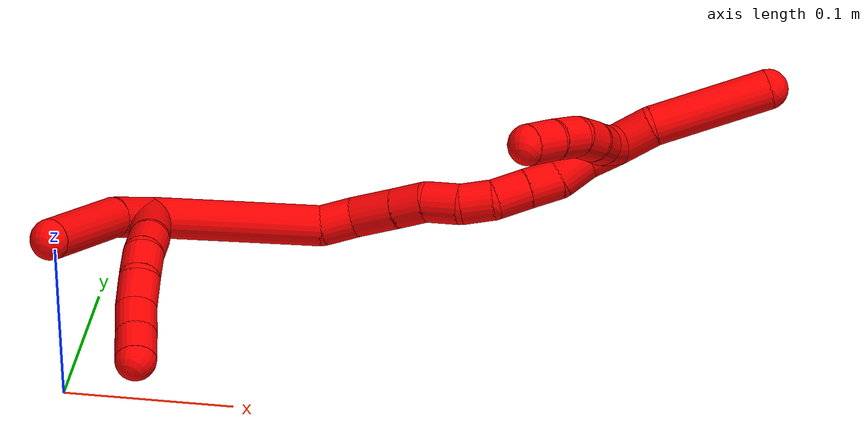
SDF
<sdf version="1.7">
 <world name="default">
  <model name="2">
   <static>0</static>
   <link name="2">
    <collision name="collision-cylinder-e_1_2_8">
     <pose>0.011216 -0.011234 -0.017692 2.57585 0.491386 1.42365</pose>
     <geometry><cylinder><radius>0.0125</radius><length>0.047539</length></cylinder></geometry>
     <surface>
      <friction><ode><mu>1.16</mu><mu2>1.16</mu2><slip1>0</slip1><slip2>0</slip2></ode></friction>
      <contact><ode><kp>1e+06</kp><kd>1</kd><max_vel>0</max_vel><min_depth>0.001</min_depth></ode></contact>
     </surface>
    </collision>
    <visual name="visual-cylinder-e_1_2_8">
     <pose>0.011216 -0.011234 -0.017692 2.57585 0.491386 1.42365</pose>
     <geometry><cylinder><radius>0.0125</radius><length>0.047539</length></cylinder></geometry>
     <material><ambient>1 0 0 1</ambient></material>
    </visual>
    <collision name="collision-cylinder-e_2_8_9">
     <pose>0.025817 -0.026387 -0.044691 2.74306 0.323427 1.35899</pose>
     <geometry><cylinder><radius>0.0125</radius><length>0.021303</length></cylinder></geometry>
     <surface>
      <friction><ode><mu>1.16</mu><mu2>1.16</mu2><slip1>0</slip1><slip2>0</slip2></ode></friction>
      <contact><ode><kp>1e+06</kp><kd>1</kd><max_vel>0</max_vel><min_depth>0.001</min_depth></ode></contact>
     </surface>
    </collision>
    <visual name="visual-cylinder-e_2_8_9">
     <pose>0.025817 -0.026387 -0.044691 2.74306 0.323427 1.35899</pose>
     <geometry><cylinder><radius>0.0125</radius><length>0.021303</length></cylinder></geometry>
     <material><ambient>1 0 0 1</ambient></material>
    </visual>
    <collision name="collision-cylinder-e_3_9_10">
     <pose>0.032228 -0.031073 -0.063601 3.0619 0.304434 2.63309</pose>
     <geometry><cylinder><radius>0.0125</radius><length>0.020193</length></cylinder></geometry>
     <surface>
      <friction><ode><mu>1.16</mu><mu2>1.16</mu2><slip1>0</slip1><slip2>0</slip2></ode></friction>
      <contact><ode><kp>1e+06</kp><kd>1</kd><max_vel>0</max_vel><min_depth>0.001</min_depth></ode></contact>
     </surface>
    </collision>
    <visual name="visual-cylinder-e_3_9_10">
     <pose>0.032228 -0.031073 -0.063601 3.0619 0.304434 2.63309</pose>
     <geometry><cylinder><radius>0.0125</radius><length>0.020193</length></cylinder></geometry>
     <material><ambient>1 0 0 1</ambient></material>
    </visual>
    <collision name="collision-cylinder-e_4_10_11">
     <pose>0.037218 -0.029649 -0.083004 -2.92165 0.193021 -1.43967</pose>
     <geometry><cylinder><radius>0.0125</radius><length>0.020467</length></cylinder></geometry>
     <surface>
      <friction><ode><mu>1.16</mu><mu2>1.16</mu2><slip1>0</slip1><slip2>0</slip2></ode></friction>
      <contact><ode><kp>1e+06</kp><kd>1</kd><max_vel>0</max_vel><min_depth>0.001</min_depth></ode></contact>
     </surface>
    </collision>
    <visual name="visual-cylinder-e_4_10_11">
     <pose>0.037218 -0.029649 -0.083004 -2.92165 0.193021 -1.43967</pose>
     <geometry><cylinder><radius>0.0125</radius><length>0.020467</length></cylinder></geometry>
     <material><ambient>1 0 0 1</ambient></material>
    </visual>
    <collision name="collision-cylinder-e_5_11_12">
     <pose>0.042933 -0.026853 -0.102237 -3.07756 0.377898 -2.80973</pose>
     <geometry><cylinder><radius>0.0125</radius><length>0.020338</length></cylinder></geometry>
     <surface>
      <friction><ode><mu>1.16</mu><mu2>1.16</mu2><slip1>0</slip1><slip2>0</slip2></ode></friction>
      <contact><ode><kp>1e+06</kp><kd>1</kd><max_vel>0</max_vel><min_depth>0.001</min_depth></ode></contact>
     </surface>
    </collision>
    <visual name="visual-cylinder-e_5_11_12">
     <pose>0.042933 -0.026853 -0.102237 -3.07756 0.377898 -2.80973</pose>
     <geometry><cylinder><radius>0.0125</radius><length>0.020338</length></cylinder></geometry>
     <material><ambient>1 0 0 1</ambient></material>
    </visual>
    <collision name="collision-cylinder-e_6_12_6">
     <pose>0.050491 -0.026401 -0.121002 3.12514 0.387232 3.05775</pose>
     <geometry><cylinder><radius>0.0125</radius><length>0.02016</length></cylinder></geometry>
     <surface>
      <friction><ode><mu>1.16</mu><mu2>1.16</mu2><slip1>0</slip1><slip2>0</slip2></ode></friction>
      <contact><ode><kp>1e+06</kp><kd>1</kd><max_vel>0</max_vel><min_depth>0.001</min_depth></ode></contact>
     </surface>
    </collision>
    <visual name="visual-cylinder-e_6_12_6">
     <pose>0.050491 -0.026401 -0.121002 3.12514 0.387232 3.05775</pose>
     <geometry><cylinder><radius>0.0125</radius><length>0.02016</length></cylinder></geometry>
     <material><ambient>1 0 0 1</ambient></material>
    </visual>
    <collision name="collision-cylinder-e_1_2_13">
     <pose>-0.003583 -0.012334 -0.011095 2.30337 -0.212721 -0.470419</pose>
     <geometry><cylinder><radius>0.0125</radius><length>0.033944</length></cylinder></geometry>
     <surface>
      <friction><ode><mu>1.16</mu><mu2>1.16</mu2><slip1>0</slip1><slip2>0</slip2></ode></friction>
      <contact><ode><kp>1e+06</kp><kd>1</kd><max_vel>0</max_vel><min_depth>0.001</min_depth></ode></contact>
     </surface>
    </collision>
    <visual name="visual-cylinder-e_1_2_13">
     <pose>-0.003583 -0.012334 -0.011095 2.30337 -0.212721 -0.470419</pose>
     <geometry><cylinder><radius>0.0125</radius><length>0.033944</length></cylinder></geometry>
     <material><ambient>1 0 0 1</ambient></material>
    </visual>
    <collision name="collision-cylinder-e_2_13_5">
     <pose>-0.009486 -0.044519 -0.048483 2.49488 -0.070302 -0.209105</pose>
     <geometry><cylinder><radius>0.0125</radius><length>0.066056</length></cylinder></geometry>
     <surface>
      <friction><ode><mu>1.16</mu><mu2>1.16</mu2><slip1>0</slip1><slip2>0</slip2></ode></friction>
      <contact><ode><kp>1e+06</kp><kd>1</kd><max_vel>0</max_vel><min_depth>0.001</min_depth></ode></contact>
     </surface>
    </collision>
    <visual name="visual-cylinder-e_2_13_5">
     <pose>-0.009486 -0.044519 -0.048483 2.49488 -0.070302 -0.209105</pose>
     <geometry><cylinder><radius>0.0125</radius><length>0.066056</length></cylinder></geometry>
     <material><ambient>1 0 0 1</ambient></material>
    </visual>
    <collision name="collision-cylinder-e_1_2_14">
     <pose>0.046847 0.017851 0.015412 -0.858607 1.10441 -0.549832</pose>
     <geometry><cylinder><radius>0.0125</radius><length>0.104896</length></cylinder></geometry>
     <surface>
      <friction><ode><mu>1.16</mu><mu2>1.16</mu2><slip1>0</slip1><slip2>0</slip2></ode></friction>
      <contact><ode><kp>1e+06</kp><kd>1</kd><max_vel>0</max_vel><min_depth>0.001</min_depth></ode></contact>
     </surface>
    </collision>
    <visual name="visual-cylinder-e_1_2_14">
     <pose>0.046847 0.017851 0.015412 -0.858607 1.10441 -0.549832</pose>
     <geometry><cylinder><radius>0.0125</radius><length>0.104896</length></cylinder></geometry>
     <material><ambient>1 0 0 1</ambient></material>
    </visual>
    <collision name="collision-cylinder-e_2_14_15">
     <pose>0.103224 0.036298 0.035564 -0.12496 1.1061 -0.077201</pose>
     <geometry><cylinder><radius>0.0125</radius><length>0.021322</length></cylinder></geometry>
     <surface>
      <friction><ode><mu>1.16</mu><mu2>1.16</mu2><slip1>0</slip1><slip2>0</slip2></ode></friction>
      <contact><ode><kp>1e+06</kp><kd>1</kd><max_vel>0</max_vel><min_depth>0.001</min_depth></ode></contact>
     </surface>
    </collision>
    <visual name="visual-cylinder-e_2_14_15">
     <pose>0.103224 0.036298 0.035564 -0.12496 1.1061 -0.077201</pose>
     <geometry><cylinder><radius>0.0125</radius><length>0.021322</length></cylinder></geometry>
     <material><ambient>1 0 0 1</ambient></material>
    </visual>
    <collision name="collision-cylinder-e_3_15_16">
     <pose>0.126576 0.034921 0.043064 0.620607 1.33015 0.492751</pose>
     <geometry><cylinder><radius>0.0125</radius><length>0.028462</length></cylinder></geometry>
     <surface>
      <friction><ode><mu>1.16</mu><mu2>1.16</mu2><slip1>0</slip1><slip2>0</slip2></ode></friction>
      <contact><ode><kp>1e+06</kp><kd>1</kd><max_vel>0</max_vel><min_depth>0.001</min_depth></ode></contact>
     </surface>
    </collision>
    <visual name="visual-cylinder-e_3_15_16">
     <pose>0.126576 0.034921 0.043064 0.620607 1.33015 0.492751</pose>
     <geometry><cylinder><radius>0.0125</radius><length>0.028462</length></cylinder></geometry>
     <material><ambient>1 0 0 1</ambient></material>
    </visual>
    <collision name="collision-cylinder-e_4_16_17">
     <pose>0.150117 0.031527 0.047899 0.600441 1.31753 0.470436</pose>
     <geometry><cylinder><radius>0.0125</radius><length>0.02008</length></cylinder></geometry>
     <surface>
      <friction><ode><mu>1.16</mu><mu2>1.16</mu2><slip1>0</slip1><slip2>0</slip2></ode></friction>
      <contact><ode><kp>1e+06</kp><kd>1</kd><max_vel>0</max_vel><min_depth>0.001</min_depth></ode></contact>
     </surface>
    </collision>
    <visual name="visual-cylinder-e_4_16_17">
     <pose>0.150117 0.031527 0.047899 0.600441 1.31753 0.470436</pose>
     <geometry><cylinder><radius>0.0125</radius><length>0.02008</length></cylinder></geometry>
     <material><ambient>1 0 0 1</ambient></material>
    </visual>
    <collision name="collision-cylinder-e_5_17_18">
     <pose>0.170891 0.031341 0.050777 -0.994866 1.43834 -0.887597</pose>
     <geometry><cylinder><radius>0.0125</radius><length>0.022305</length></cylinder></geometry>
     <surface>
      <friction><ode><mu>1.16</mu><mu2>1.16</mu2><slip1>0</slip1><slip2>0</slip2></ode></friction>
      <contact><ode><kp>1e+06</kp><kd>1</kd><max_vel>0</max_vel><min_depth>0.001</min_depth></ode></contact>
     </surface>
    </collision>
    <visual name="visual-cylinder-e_5_17_18">
     <pose>0.170891 0.031341 0.050777 -0.994866 1.43834 -0.887597</pose>
     <geometry><cylinder><radius>0.0125</radius><length>0.022305</length></cylinder></geometry>
     <material><ambient>1 0 0 1</ambient></material>
    </visual>
    <collision name="collision-cylinder-e_6_18_19">
     <pose>0.191293 0.033816 0.055135 -0.33544 1.18778 -0.227649</pose>
     <geometry><cylinder><radius>0.0125</radius><length>0.020154</length></cylinder></geometry>
     <surface>
      <friction><ode><mu>1.16</mu><mu2>1.16</mu2><slip1>0</slip1><slip2>0</slip2></ode></friction>
      <contact><ode><kp>1e+06</kp><kd>1</kd><max_vel>0</max_vel><min_depth>0.001</min_depth></ode></contact>
     </surface>
    </collision>
    <visual name="visual-cylinder-e_6_18_19">
     <pose>0.191293 0.033816 0.055135 -0.33544 1.18778 -0.227649</pose>
     <geometry><cylinder><radius>0.0125</radius><length>0.020154</length></cylinder></geometry>
     <material><ambient>1 0 0 1</ambient></material>
    </visual>
    <collision name="collision-cylinder-e_7_19_20">
     <pose>0.208607 0.037035 0.065404 -0.286633 0.850031 -0.130441</pose>
     <geometry><cylinder><radius>0.0125</radius><length>0.02121</length></cylinder></geometry>
     <surface>
      <friction><ode><mu>1.16</mu><mu2>1.16</mu2><slip1>0</slip1><slip2>0</slip2></ode></friction>
      <contact><ode><kp>1e+06</kp><kd>1</kd><max_vel>0</max_vel><min_depth>0.001</min_depth></ode></contact>
     </surface>
    </collision>
    <visual name="visual-cylinder-e_7_19_20">
     <pose>0.208607 0.037035 0.065404 -0.286633 0.850031 -0.130441</pose>
     <geometry><cylinder><radius>0.0125</radius><length>0.02121</length></cylinder></geometry>
     <material><ambient>1 0 0 1</ambient></material>
    </visual>
    <collision name="collision-cylinder-e_8_20_21">
     <pose>0.224302 0.041138 0.078532 -0.319927 0.852316 -0.146231</pose>
     <geometry><cylinder><radius>0.0125</radius><length>0.020529</length></cylinder></geometry>
     <surface>
      <friction><ode><mu>1.16</mu><mu2>1.16</mu2><slip1>0</slip1><slip2>0</slip2></ode></friction>
      <contact><ode><kp>1e+06</kp><kd>1</kd><max_vel>0</max_vel><min_depth>0.001</min_depth></ode></contact>
     </surface>
    </collision>
    <visual name="visual-cylinder-e_8_20_21">
     <pose>0.224302 0.041138 0.078532 -0.319927 0.852316 -0.146231</pose>
     <geometry><cylinder><radius>0.0125</radius><length>0.020529</length></cylinder></geometry>
     <material><ambient>1 0 0 1</ambient></material>
    </visual>
    <collision name="collision-cylinder-e_9_21_22">
     <pose>0.238619 0.042457 0.092671 0.104042 0.703557 0.038218</pose>
     <geometry><cylinder><radius>0.0125</radius><length>0.020373</length></cylinder></geometry>
     <surface>
      <friction><ode><mu>1.16</mu><mu2>1.16</mu2><slip1>0</slip1><slip2>0</slip2></ode></friction>
      <contact><ode><kp>1e+06</kp><kd>1</kd><max_vel>0</max_vel><min_depth>0.001</min_depth></ode></contact>
     </surface>
    </collision>
    <visual name="visual-cylinder-e_9_21_22">
     <pose>0.238619 0.042457 0.092671 0.104042 0.703557 0.038218</pose>
     <geometry><cylinder><radius>0.0125</radius><length>0.020373</length></cylinder></geometry>
     <material><ambient>1 0 0 1</ambient></material>
    </visual>
    <collision name="collision-cylinder-e_10_22_1">
     <pose>0.252482 0.042881 0.107634 -0.168473 0.780662 -0.069453</pose>
     <geometry><cylinder><radius>0.0125</radius><length>0.020668</length></cylinder></geometry>
     <surface>
      <friction><ode><mu>1.16</mu><mu2>1.16</mu2><slip1>0</slip1><slip2>0</slip2></ode></friction>
      <contact><ode><kp>1e+06</kp><kd>1</kd><max_vel>0</max_vel><min_depth>0.001</min_depth></ode></contact>
     </surface>
    </collision>
    <visual name="visual-cylinder-e_10_22_1">
     <pose>0.252482 0.042881 0.107634 -0.168473 0.780662 -0.069453</pose>
     <geometry><cylinder><radius>0.0125</radius><length>0.020668</length></cylinder></geometry>
     <material><ambient>1 0 0 1</ambient></material>
    </visual>
    <collision name="collision-cylinder-e_1_1_23">
     <pose>0.259552 0.036612 0.108261 2.2933 -0.020215 -0.044761</pose>
     <geometry><cylinder><radius>0.0125</radius><length>0.02</length></cylinder></geometry>
     <surface>
      <friction><ode><mu>1.16</mu><mu2>1.16</mu2><slip1>0</slip1><slip2>0</slip2></ode></friction>
      <contact><ode><kp>1e+06</kp><kd>1</kd><max_vel>0</max_vel><min_depth>0.001</min_depth></ode></contact>
     </surface>
    </collision>
    <visual name="visual-cylinder-e_1_1_23">
     <pose>0.259552 0.036612 0.108261 2.2933 -0.020215 -0.044761</pose>
     <geometry><cylinder><radius>0.0125</radius><length>0.02</length></cylinder></geometry>
     <material><ambient>1 0 0 1</ambient></material>
    </visual>
    <collision name="collision-cylinder-e_2_23_24">
     <pose>0.260538 0.021025 0.095889 2.18974 0.119126 0.230361</pose>
     <geometry><cylinder><radius>0.0125</radius><length>0.02</length></cylinder></geometry>
     <surface>
      <friction><ode><mu>1.16</mu><mu2>1.16</mu2><slip1>0</slip1><slip2>0</slip2></ode></friction>
      <contact><ode><kp>1e+06</kp><kd>1</kd><max_vel>0</max_vel><min_depth>0.001</min_depth></ode></contact>
     </surface>
    </collision>
    <visual name="visual-cylinder-e_2_23_24">
     <pose>0.260538 0.021025 0.095889 2.18974 0.119126 0.230361</pose>
     <geometry><cylinder><radius>0.0125</radius><length>0.02</length></cylinder></geometry>
     <material><ambient>1 0 0 1</ambient></material>
    </visual>
    <collision name="collision-cylinder-e_3_24_25">
     <pose>0.260711 0.004751 0.084476 2.17507 -0.101711 -0.193384</pose>
     <geometry><cylinder><radius>0.0125</radius><length>0.02</length></cylinder></geometry>
     <surface>
      <friction><ode><mu>1.16</mu><mu2>1.16</mu2><slip1>0</slip1><slip2>0</slip2></ode></friction>
      <contact><ode><kp>1e+06</kp><kd>1</kd><max_vel>0</max_vel><min_depth>0.001</min_depth></ode></contact>
     </surface>
    </collision>
    <visual name="visual-cylinder-e_3_24_25">
     <pose>0.260711 0.004751 0.084476 2.17507 -0.101711 -0.193384</pose>
     <geometry><cylinder><radius>0.0125</radius><length>0.02</length></cylinder></geometry>
     <material><ambient>1 0 0 1</ambient></material>
    </visual>
    <collision name="collision-cylinder-e_4_25_26">
     <pose>0.256597 -0.009726 0.071694 2.41869 -0.315105 -0.795629</pose>
     <geometry><cylinder><radius>0.0125</radius><length>0.02</length></cylinder></geometry>
     <surface>
      <friction><ode><mu>1.16</mu><mu2>1.16</mu2><slip1>0</slip1><slip2>0</slip2></ode></friction>
      <contact><ode><kp>1e+06</kp><kd>1</kd><max_vel>0</max_vel><min_depth>0.001</min_depth></ode></contact>
     </surface>
    </collision>
    <visual name="visual-cylinder-e_4_25_26">
     <pose>0.256597 -0.009726 0.071694 2.41869 -0.315105 -0.795629</pose>
     <geometry><cylinder><radius>0.0125</radius><length>0.02</length></cylinder></geometry>
     <material><ambient>1 0 0 1</ambient></material>
    </visual>
    <collision name="collision-cylinder-e_5_26_4">
     <pose>0.249199 -0.021434 0.057342 2.49794 -0.444336 -1.19096</pose>
     <geometry><cylinder><radius>0.0125</radius><length>0.02</length></cylinder></geometry>
     <surface>
      <friction><ode><mu>1.16</mu><mu2>1.16</mu2><slip1>0</slip1><slip2>0</slip2></ode></friction>
      <contact><ode><kp>1e+06</kp><kd>1</kd><max_vel>0</max_vel><min_depth>0.001</min_depth></ode></contact>
     </surface>
    </collision>
    <visual name="visual-cylinder-e_5_26_4">
     <pose>0.249199 -0.021434 0.057342 2.49794 -0.444336 -1.19096</pose>
     <geometry><cylinder><radius>0.0125</radius><length>0.02</length></cylinder></geometry>
     <material><ambient>1 0 0 1</ambient></material>
    </visual>
    <collision name="collision-cylinder-e_1_1_27">
     <pose>0.270394 0.042157 0.121762 0.276484 0.978336 0.147853</pose>
     <geometry><cylinder><radius>0.0125</radius><length>0.025652</length></cylinder></geometry>
     <surface>
      <friction><ode><mu>1.16</mu><mu2>1.16</mu2><slip1>0</slip1><slip2>0</slip2></ode></friction>
      <contact><ode><kp>1e+06</kp><kd>1</kd><max_vel>0</max_vel><min_depth>0.001</min_depth></ode></contact>
     </surface>
    </collision>
    <visual name="visual-cylinder-e_1_1_27">
     <pose>0.270394 0.042157 0.121762 0.276484 0.978336 0.147853</pose>
     <geometry><cylinder><radius>0.0125</radius><length>0.025652</length></cylinder></geometry>
     <material><ambient>1 0 0 1</ambient></material>
    </visual>
    <collision name="collision-cylinder-e_2_27_3">
     <pose>0.31118 0.04497 0.149876 -0.220977 0.945728 -0.113387</pose>
     <geometry><cylinder><radius>0.0125</radius><length>0.074348</length></cylinder></geometry>
     <surface>
      <friction><ode><mu>1.16</mu><mu2>1.16</mu2><slip1>0</slip1><slip2>0</slip2></ode></friction>
      <contact><ode><kp>1e+06</kp><kd>1</kd><max_vel>0</max_vel><min_depth>0.001</min_depth></ode></contact>
     </surface>
    </collision>
    <visual name="visual-cylinder-e_2_27_3">
     <pose>0.31118 0.04497 0.149876 -0.220977 0.945728 -0.113387</pose>
     <geometry><cylinder><radius>0.0125</radius><length>0.074348</length></cylinder></geometry>
     <material><ambient>1 0 0 1</ambient></material>
    </visual>
    <collision name="collision-sphere-3">
     <pose>0.341325 0.049737 0.171099 0 -0 0</pose>
     <geometry><sphere><radius>0.0125</radius></sphere></geometry>
     <surface>
      <friction><ode><mu>1.16</mu><mu2>1.16</mu2><slip1>0</slip1><slip2>0</slip2></ode></friction>
      <contact><ode><kp>1e+06</kp><kd>1</kd><max_vel>0</max_vel><min_depth>0.001</min_depth></ode></contact>
     </surface>
    </collision>
    <visual name="visual-sphere-3">
     <pose>0.341325 0.049737 0.171099 0 -0 0</pose>
     <geometry><sphere><radius>0.0125</radius></sphere></geometry>
     <material><ambient>1 0 0 1</ambient></material>
    </visual>
    <collision name="collision-sphere-27">
     <pose>0.281034 0.040202 0.128652 0 -0 0</pose>
     <geometry><sphere><radius>0.0125</radius></sphere></geometry>
     <surface>
      <friction><ode><mu>1.16</mu><mu2>1.16</mu2><slip1>0</slip1><slip2>0</slip2></ode></friction>
      <contact><ode><kp>1e+06</kp><kd>1</kd><max_vel>0</max_vel><min_depth>0.001</min_depth></ode></contact>
     </surface>
    </collision>
    <visual name="visual-sphere-27">
     <pose>0.281034 0.040202 0.128652 0 -0 0</pose>
     <geometry><sphere><radius>0.0125</radius></sphere></geometry>
     <material><ambient>1 0 0 1</ambient></material>
    </visual>
    <collision name="collision-sphere-4">
     <pose>0.244901 -0.026853 0.05012 0 -0 0</pose>
     <geometry><sphere><radius>0.0125</radius></sphere></geometry>
     <surface>
      <friction><ode><mu>1.16</mu><mu2>1.16</mu2><slip1>0</slip1><slip2>0</slip2></ode></friction>
      <contact><ode><kp>1e+06</kp><kd>1</kd><max_vel>0</max_vel><min_depth>0.001</min_depth></ode></contact>
     </surface>
    </collision>
    <visual name="visual-sphere-4">
     <pose>0.244901 -0.026853 0.05012 0 -0 0</pose>
     <geometry><sphere><radius>0.0125</radius></sphere></geometry>
     <material><ambient>1 0 0 1</ambient></material>
    </visual>
    <collision name="collision-sphere-26">
     <pose>0.253498 -0.016016 0.064565 0 -0 0</pose>
     <geometry><sphere><radius>0.0125</radius></sphere></geometry>
     <surface>
      <friction><ode><mu>1.16</mu><mu2>1.16</mu2><slip1>0</slip1><slip2>0</slip2></ode></friction>
      <contact><ode><kp>1e+06</kp><kd>1</kd><max_vel>0</max_vel><min_depth>0.001</min_depth></ode></contact>
     </surface>
    </collision>
    <visual name="visual-sphere-26">
     <pose>0.253498 -0.016016 0.064565 0 -0 0</pose>
     <geometry><sphere><radius>0.0125</radius></sphere></geometry>
     <material><ambient>1 0 0 1</ambient></material>
    </visual>
    <collision name="collision-sphere-25">
     <pose>0.259696 -0.003436 0.078824 0 -0 0</pose>
     <geometry><sphere><radius>0.0125</radius></sphere></geometry>
     <surface>
      <friction><ode><mu>1.16</mu><mu2>1.16</mu2><slip1>0</slip1><slip2>0</slip2></ode></friction>
      <contact><ode><kp>1e+06</kp><kd>1</kd><max_vel>0</max_vel><min_depth>0.001</min_depth></ode></contact>
     </surface>
    </collision>
    <visual name="visual-sphere-25">
     <pose>0.259696 -0.003436 0.078824 0 -0 0</pose>
     <geometry><sphere><radius>0.0125</radius></sphere></geometry>
     <material><ambient>1 0 0 1</ambient></material>
    </visual>
    <collision name="collision-sphere-24">
     <pose>0.261727 0.012938 0.090129 0 -0 0</pose>
     <geometry><sphere><radius>0.0125</radius></sphere></geometry>
     <surface>
      <friction><ode><mu>1.16</mu><mu2>1.16</mu2><slip1>0</slip1><slip2>0</slip2></ode></friction>
      <contact><ode><kp>1e+06</kp><kd>1</kd><max_vel>0</max_vel><min_depth>0.001</min_depth></ode></contact>
     </surface>
    </collision>
    <visual name="visual-sphere-24">
     <pose>0.261727 0.012938 0.090129 0 -0 0</pose>
     <geometry><sphere><radius>0.0125</radius></sphere></geometry>
     <material><ambient>1 0 0 1</ambient></material>
    </visual>
    <collision name="collision-sphere-23">
     <pose>0.25935 0.029112 0.10165 0 -0 0</pose>
     <geometry><sphere><radius>0.0125</radius></sphere></geometry>
     <surface>
      <friction><ode><mu>1.16</mu><mu2>1.16</mu2><slip1>0</slip1><slip2>0</slip2></ode></friction>
      <contact><ode><kp>1e+06</kp><kd>1</kd><max_vel>0</max_vel><min_depth>0.001</min_depth></ode></contact>
     </surface>
    </collision>
    <visual name="visual-sphere-23">
     <pose>0.25935 0.029112 0.10165 0 -0 0</pose>
     <geometry><sphere><radius>0.0125</radius></sphere></geometry>
     <material><ambient>1 0 0 1</ambient></material>
    </visual>
    <collision name="collision-sphere-1">
     <pose>0.259754 0.044112 0.114872 0 -0 0</pose>
     <geometry><sphere><radius>0.0125</radius></sphere></geometry>
     <surface>
      <friction><ode><mu>1.16</mu><mu2>1.16</mu2><slip1>0</slip1><slip2>0</slip2></ode></friction>
      <contact><ode><kp>1e+06</kp><kd>1</kd><max_vel>0</max_vel><min_depth>0.001</min_depth></ode></contact>
     </surface>
    </collision>
    <visual name="visual-sphere-1">
     <pose>0.259754 0.044112 0.114872 0 -0 0</pose>
     <geometry><sphere><radius>0.0125</radius></sphere></geometry>
     <material><ambient>1 0 0 1</ambient></material>
    </visual>
    <collision name="collision-sphere-22">
     <pose>0.245209 0.04165 0.100397 0 -0 0</pose>
     <geometry><sphere><radius>0.0125</radius></sphere></geometry>
     <surface>
      <friction><ode><mu>1.16</mu><mu2>1.16</mu2><slip1>0</slip1><slip2>0</slip2></ode></friction>
      <contact><ode><kp>1e+06</kp><kd>1</kd><max_vel>0</max_vel><min_depth>0.001</min_depth></ode></contact>
     </surface>
    </collision>
    <visual name="visual-sphere-22">
     <pose>0.245209 0.04165 0.100397 0 -0 0</pose>
     <geometry><sphere><radius>0.0125</radius></sphere></geometry>
     <material><ambient>1 0 0 1</ambient></material>
    </visual>
    <collision name="collision-sphere-21">
     <pose>0.232029 0.043263 0.084945 0 -0 0</pose>
     <geometry><sphere><radius>0.0125</radius></sphere></geometry>
     <surface>
      <friction><ode><mu>1.16</mu><mu2>1.16</mu2><slip1>0</slip1><slip2>0</slip2></ode></friction>
      <contact><ode><kp>1e+06</kp><kd>1</kd><max_vel>0</max_vel><min_depth>0.001</min_depth></ode></contact>
     </surface>
    </collision>
    <visual name="visual-sphere-21">
     <pose>0.232029 0.043263 0.084945 0 -0 0</pose>
     <geometry><sphere><radius>0.0125</radius></sphere></geometry>
     <material><ambient>1 0 0 1</ambient></material>
    </visual>
    <collision name="collision-sphere-12">
     <pose>0.046685 -0.026248 -0.111669 0 -0 0</pose>
     <geometry><sphere><radius>0.0125</radius></sphere></geometry>
     <surface>
      <friction><ode><mu>1.16</mu><mu2>1.16</mu2><slip1>0</slip1><slip2>0</slip2></ode></friction>
      <contact><ode><kp>1e+06</kp><kd>1</kd><max_vel>0</max_vel><min_depth>0.001</min_depth></ode></contact>
     </surface>
    </collision>
    <visual name="visual-sphere-12">
     <pose>0.046685 -0.026248 -0.111669 0 -0 0</pose>
     <geometry><sphere><radius>0.0125</radius></sphere></geometry>
     <material><ambient>1 0 0 1</ambient></material>
    </visual>
    <collision name="collision-sphere-11">
     <pose>0.039181 -0.027457 -0.092805 0 -0 0</pose>
     <geometry><sphere><radius>0.0125</radius></sphere></geometry>
     <surface>
      <friction><ode><mu>1.16</mu><mu2>1.16</mu2><slip1>0</slip1><slip2>0</slip2></ode></friction>
      <contact><ode><kp>1e+06</kp><kd>1</kd><max_vel>0</max_vel><min_depth>0.001</min_depth></ode></contact>
     </surface>
    </collision>
    <visual name="visual-sphere-11">
     <pose>0.039181 -0.027457 -0.092805 0 -0 0</pose>
     <geometry><sphere><radius>0.0125</radius></sphere></geometry>
     <material><ambient>1 0 0 1</ambient></material>
    </visual>
    <collision name="collision-sphere-10">
     <pose>0.035255 -0.03184 -0.073202 0 -0 0</pose>
     <geometry><sphere><radius>0.0125</radius></sphere></geometry>
     <surface>
      <friction><ode><mu>1.16</mu><mu2>1.16</mu2><slip1>0</slip1><slip2>0</slip2></ode></friction>
      <contact><ode><kp>1e+06</kp><kd>1</kd><max_vel>0</max_vel><min_depth>0.001</min_depth></ode></contact>
     </surface>
    </collision>
    <visual name="visual-sphere-10">
     <pose>0.035255 -0.03184 -0.073202 0 -0 0</pose>
     <geometry><sphere><radius>0.0125</radius></sphere></geometry>
     <material><ambient>1 0 0 1</ambient></material>
    </visual>
    <collision name="collision-sphere-9">
     <pose>0.029202 -0.030306 -0.053999 0 -0 0</pose>
     <geometry><sphere><radius>0.0125</radius></sphere></geometry>
     <surface>
      <friction><ode><mu>1.16</mu><mu2>1.16</mu2><slip1>0</slip1><slip2>0</slip2></ode></friction>
      <contact><ode><kp>1e+06</kp><kd>1</kd><max_vel>0</max_vel><min_depth>0.001</min_depth></ode></contact>
     </surface>
    </collision>
    <visual name="visual-sphere-9">
     <pose>0.029202 -0.030306 -0.053999 0 -0 0</pose>
     <geometry><sphere><radius>0.0125</radius></sphere></geometry>
     <material><ambient>1 0 0 1</ambient></material>
    </visual>
    <collision name="collision-sphere-2">
     <geometry><sphere><radius>0.0125</radius></sphere></geometry>
     <surface>
      <friction><ode><mu>1.16</mu><mu2>1.16</mu2><slip1>0</slip1><slip2>0</slip2></ode></friction>
      <contact><ode><kp>1e+06</kp><kd>1</kd><max_vel>0</max_vel><min_depth>0.001</min_depth></ode></contact>
     </surface>
    </collision>
    <visual name="visual-sphere-2">
     <geometry><sphere><radius>0.0125</radius></sphere></geometry>
     <material><ambient>1 0 0 1</ambient></material>
    </visual>
    <collision name="collision-sphere-19">
     <pose>0.200639 0.035056 0.058691 0 -0 0</pose>
     <geometry><sphere><radius>0.0125</radius></sphere></geometry>
     <surface>
      <friction><ode><mu>1.16</mu><mu2>1.16</mu2><slip1>0</slip1><slip2>0</slip2></ode></friction>
      <contact><ode><kp>1e+06</kp><kd>1</kd><max_vel>0</max_vel><min_depth>0.001</min_depth></ode></contact>
     </surface>
    </collision>
    <visual name="visual-sphere-19">
     <pose>0.200639 0.035056 0.058691 0 -0 0</pose>
     <geometry><sphere><radius>0.0125</radius></sphere></geometry>
     <material><ambient>1 0 0 1</ambient></material>
    </visual>
    <collision name="collision-sphere-8">
     <pose>0.022431 -0.022468 -0.035384 0 -0 0</pose>
     <geometry><sphere><radius>0.0125</radius></sphere></geometry>
     <surface>
      <friction><ode><mu>1.16</mu><mu2>1.16</mu2><slip1>0</slip1><slip2>0</slip2></ode></friction>
      <contact><ode><kp>1e+06</kp><kd>1</kd><max_vel>0</max_vel><min_depth>0.001</min_depth></ode></contact>
     </surface>
    </collision>
    <visual name="visual-sphere-8">
     <pose>0.022431 -0.022468 -0.035384 0 -0 0</pose>
     <geometry><sphere><radius>0.0125</radius></sphere></geometry>
     <material><ambient>1 0 0 1</ambient></material>
    </visual>
    <collision name="collision-sphere-6">
     <pose>0.054298 -0.026555 -0.130334 0 -0 0</pose>
     <geometry><sphere><radius>0.0125</radius></sphere></geometry>
     <surface>
      <friction><ode><mu>1.16</mu><mu2>1.16</mu2><slip1>0</slip1><slip2>0</slip2></ode></friction>
      <contact><ode><kp>1e+06</kp><kd>1</kd><max_vel>0</max_vel><min_depth>0.001</min_depth></ode></contact>
     </surface>
    </collision>
    <visual name="visual-sphere-6">
     <pose>0.054298 -0.026555 -0.130334 0 -0 0</pose>
     <geometry><sphere><radius>0.0125</radius></sphere></geometry>
     <material><ambient>1 0 0 1</ambient></material>
    </visual>
    <collision name="collision-sphere-13">
     <pose>-0.007166 -0.024667 -0.02219 0 -0 0</pose>
     <geometry><sphere><radius>0.0125</radius></sphere></geometry>
     <surface>
      <friction><ode><mu>1.16</mu><mu2>1.16</mu2><slip1>0</slip1><slip2>0</slip2></ode></friction>
      <contact><ode><kp>1e+06</kp><kd>1</kd><max_vel>0</max_vel><min_depth>0.001</min_depth></ode></contact>
     </surface>
    </collision>
    <visual name="visual-sphere-13">
     <pose>-0.007166 -0.024667 -0.02219 0 -0 0</pose>
     <geometry><sphere><radius>0.0125</radius></sphere></geometry>
     <material><ambient>1 0 0 1</ambient></material>
    </visual>
    <collision name="collision-sphere-5">
     <pose>-0.011806 -0.064372 -0.074777 0 -0 0</pose>
     <geometry><sphere><radius>0.0125</radius></sphere></geometry>
     <surface>
      <friction><ode><mu>1.16</mu><mu2>1.16</mu2><slip1>0</slip1><slip2>0</slip2></ode></friction>
      <contact><ode><kp>1e+06</kp><kd>1</kd><max_vel>0</max_vel><min_depth>0.001</min_depth></ode></contact>
     </surface>
    </collision>
    <visual name="visual-sphere-5">
     <pose>-0.011806 -0.064372 -0.074777 0 -0 0</pose>
     <geometry><sphere><radius>0.0125</radius></sphere></geometry>
     <material><ambient>1 0 0 1</ambient></material>
    </visual>
    <collision name="collision-sphere-14">
     <pose>0.093693 0.035703 0.030824 0 -0 0</pose>
     <geometry><sphere><radius>0.0125</radius></sphere></geometry>
     <surface>
      <friction><ode><mu>1.16</mu><mu2>1.16</mu2><slip1>0</slip1><slip2>0</slip2></ode></friction>
      <contact><ode><kp>1e+06</kp><kd>1</kd><max_vel>0</max_vel><min_depth>0.001</min_depth></ode></contact>
     </surface>
    </collision>
    <visual name="visual-sphere-14">
     <pose>0.093693 0.035703 0.030824 0 -0 0</pose>
     <geometry><sphere><radius>0.0125</radius></sphere></geometry>
     <material><ambient>1 0 0 1</ambient></material>
    </visual>
    <collision name="collision-sphere-15">
     <pose>0.112755 0.036893 0.040305 0 -0 0</pose>
     <geometry><sphere><radius>0.0125</radius></sphere></geometry>
     <surface>
      <friction><ode><mu>1.16</mu><mu2>1.16</mu2><slip1>0</slip1><slip2>0</slip2></ode></friction>
      <contact><ode><kp>1e+06</kp><kd>1</kd><max_vel>0</max_vel><min_depth>0.001</min_depth></ode></contact>
     </surface>
    </collision>
    <visual name="visual-sphere-15">
     <pose>0.112755 0.036893 0.040305 0 -0 0</pose>
     <geometry><sphere><radius>0.0125</radius></sphere></geometry>
     <material><ambient>1 0 0 1</ambient></material>
    </visual>
    <collision name="collision-sphere-16">
     <pose>0.140397 0.032949 0.045823 0 -0 0</pose>
     <geometry><sphere><radius>0.0125</radius></sphere></geometry>
     <surface>
      <friction><ode><mu>1.16</mu><mu2>1.16</mu2><slip1>0</slip1><slip2>0</slip2></ode></friction>
      <contact><ode><kp>1e+06</kp><kd>1</kd><max_vel>0</max_vel><min_depth>0.001</min_depth></ode></contact>
     </surface>
    </collision>
    <visual name="visual-sphere-16">
     <pose>0.140397 0.032949 0.045823 0 -0 0</pose>
     <geometry><sphere><radius>0.0125</radius></sphere></geometry>
     <material><ambient>1 0 0 1</ambient></material>
    </visual>
    <collision name="collision-sphere-17">
     <pose>0.159836 0.030106 0.049975 0 -0 0</pose>
     <geometry><sphere><radius>0.0125</radius></sphere></geometry>
     <surface>
      <friction><ode><mu>1.16</mu><mu2>1.16</mu2><slip1>0</slip1><slip2>0</slip2></ode></friction>
      <contact><ode><kp>1e+06</kp><kd>1</kd><max_vel>0</max_vel><min_depth>0.001</min_depth></ode></contact>
     </surface>
    </collision>
    <visual name="visual-sphere-17">
     <pose>0.159836 0.030106 0.049975 0 -0 0</pose>
     <geometry><sphere><radius>0.0125</radius></sphere></geometry>
     <material><ambient>1 0 0 1</ambient></material>
    </visual>
    <collision name="collision-sphere-18">
     <pose>0.181946 0.032576 0.051579 0 -0 0</pose>
     <geometry><sphere><radius>0.0125</radius></sphere></geometry>
     <surface>
      <friction><ode><mu>1.16</mu><mu2>1.16</mu2><slip1>0</slip1><slip2>0</slip2></ode></friction>
      <contact><ode><kp>1e+06</kp><kd>1</kd><max_vel>0</max_vel><min_depth>0.001</min_depth></ode></contact>
     </surface>
    </collision>
    <visual name="visual-sphere-18">
     <pose>0.181946 0.032576 0.051579 0 -0 0</pose>
     <geometry><sphere><radius>0.0125</radius></sphere></geometry>
     <material><ambient>1 0 0 1</ambient></material>
    </visual>
    <collision name="collision-sphere-20">
     <pose>0.216574 0.039013 0.072118 0 -0 0</pose>
     <geometry><sphere><radius>0.0125</radius></sphere></geometry>
     <surface>
      <friction><ode><mu>1.16</mu><mu2>1.16</mu2><slip1>0</slip1><slip2>0</slip2></ode></friction>
      <contact><ode><kp>1e+06</kp><kd>1</kd><max_vel>0</max_vel><min_depth>0.001</min_depth></ode></contact>
     </surface>
    </collision>
    <visual name="visual-sphere-20">
     <pose>0.216574 0.039013 0.072118 0 -0 0</pose>
     <geometry><sphere><radius>0.0125</radius></sphere></geometry>
     <material><ambient>1 0 0 1</ambient></material>
    </visual>
    <inertial>
     <pose>0.133267 0.009755 0.031552 0 -0 0</pose>
     <mass>0.75</mass>
     <inertia><ixx>0.000105</ixx><ixy>0</ixy><ixz>0</ixz><iyy>9e-05</iyy><iyz>0</iyz><izz>-0.000156</izz></inertia>
    </inertial>
   </link>
   <pose>0.019398 0.164819 0.016883 -1.24732 -0.19554 -0.270632</pose>
  </model>
 </world>
</sdf>
